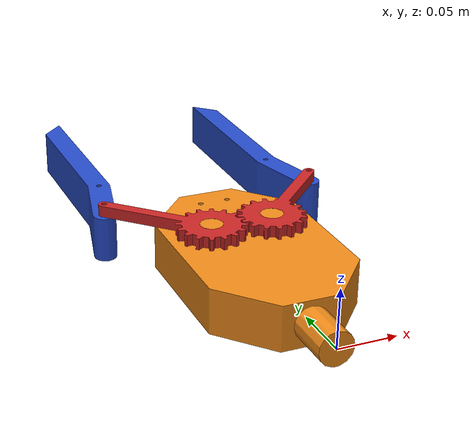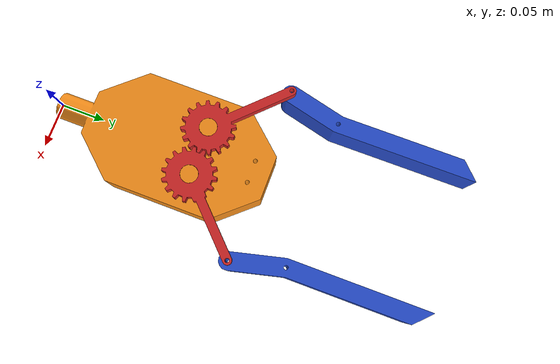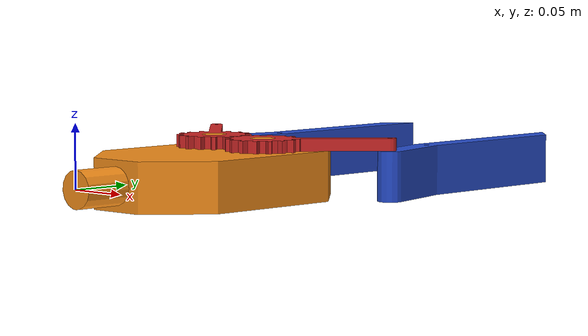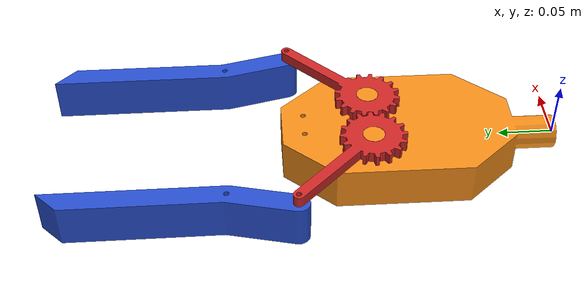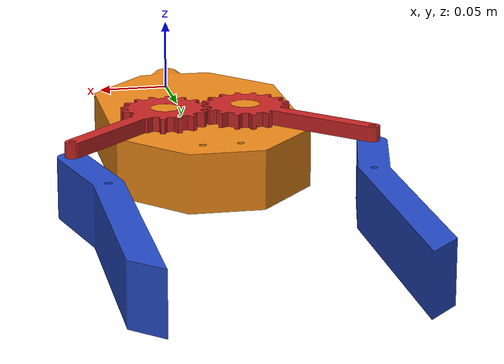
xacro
<?xml version="1.0" encoding="utf-8"?>
<robot name="" xmlns:xacro="https://www.ros.org/wiki/xacro">

  <xacro:macro name="visual_and_collision_origin">
    <origin xyz="0 0 0" rpy="0 0 0"/>
  </xacro:macro>

  <xacro:macro name="visual_and_collision_geometry" params="link_name">
    <geometry>
      <mesh filename="package://flip1_description/meshes/${link_name}.STL"/>
    </geometry>
  </xacro:macro>

  <xacro:macro name="visual_and_collision_for_link" params="material_name  gen_link_name">
    <visual>
      <xacro:visual_and_collision_origin/>
      <xacro:visual_and_collision_geometry link_name="${gen_link_name}"/>
      <material name="${material_name}"/>
    </visual>
    <collision>
      <xacro:visual_and_collision_origin/>
      <xacro:visual_and_collision_geometry link_name="${gen_link_name}"/>
    </collision>
  </xacro:macro>

  <xacro:macro name="link_tag" params="link material mass *inertial_origin **interia_matrix">
    <link name="${link}">
      <xacro:visual_and_collision_for_link material_name="${material}" gen_link_name="${link}"/>
      <inertial>
        <mass value="${mass}"/>
        <xacro:insert_block name="inertial_origin"/>
        <xacro:insert_block name="interia_matrix"/>
      </inertial>
    </link>
  </xacro:macro>

  <xacro:link_tag link="base_link_gripper" material="orange" mass="0.98099">
    <origin xyz="0 0.14142 0.00016012" rpy="0 0 0"/>
    <inertial_matrix>
      <inertia
        ixx="0.003388"
        ixy="-1.1855E-19"
        ixz="-1.5339E-20"
        iyy="0.0012787"
        iyz="-4.4891E-06"
        izz="0.0044032" />
    </inertial_matrix>
  </xacro:link_tag>

  <xacro:link_tag link="gear1_link" material="red" mass="0.02723">
    <origin xyz="-2.77555756156289E-17 0.0175862034544711 5.55111512312578E-17" rpy="0 0 0"/>
    <inertial_matrix>
      <inertia
        ixx="3.02981038903534E-05"
        ixy="1.6940658945086E-21"
        ixz="7.49263431833363E-22"
        iyy="4.50525088859917E-06"
        iyz="1.5400867235027E-21"
        izz="3.43494877805828E-05" />
    </inertial_matrix>
  </xacro:link_tag>

  <xacro:link_tag link="finger_gear1_link" material="blue" mass="0.17145">
    <origin xyz="-0.012289 0.101 0" rpy="0 0 0"/>
    <inertial_matrix>
      <inertia
        ixx="0.0007122"
        ixy="4.0775E-05"
        ixz="4.039E-21"
        iyy="3.2189E-05"
        iyz="-6.5264E-21"
        izz="0.00069867" />
    </inertial_matrix>
  </xacro:link_tag>

  <xacro:link_tag link="gear2_link" material="red" mass="0.02723">
    <origin xyz="4.33006840808159E-06 0.0177884712258021 5.55111512312578E-17" rpy="0 0 0"/>
    <inertial_matrix>
      <inertia
        ixx="3.0626740029709E-05"
        ixy="-1.15573930909179E-09"
        ixz="-1.4165993432485E-21"
        iyy="4.4831636497222E-06"
        iyz="4.26143905320326E-22"
        izz="3.46553024908243E-05"/>
    </inertial_matrix>
  </xacro:link_tag>

  <xacro:link_tag link="finger_gear2_link" material="blue" mass="0.17145">
    <origin xyz="-0.012289 0.101 -5.5511E-17" rpy="0 0 0"/>
    <inertial_matrix>
      <inertia
        ixx="0.0007122"
        ixy="4.0775E-05"
        ixz="-3.8232E-21"
        iyy="3.2189E-05"
        iyz="5.6109E-21"
        izz="0.00069867" />
    </inertial_matrix>
  </xacro:link_tag>

  <joint name="base_gear1_joint" type="revolute">
    <origin
      xyz="-0.0275 0.17 0.025"
      rpy="0 0 0.78573" />
    <parent
      link="base_link_gripper" />
    <child
      link="gear1_link" />
    <axis
      xyz="0 0 1" />
    <limit
      lower="-0.53"
      upper="1.19"
      effort="25"
      velocity="1" />
  </joint>

  <joint name="finger_gear1_joint" type="revolute">
    <origin
      xyz="0 0.099495 -0.025"
      rpy="-3.1416 0 2.3612" />
    <parent
      link="gear1_link" />
    <child
      link="finger_gear1_link" />
    <axis
      xyz="0 0 -1" />
    <limit
      lower="-1.23"
      upper="0.43"
      effort="25"
      velocity="1" />
  </joint>

  <joint name="base_gear2_joint" type="revolute">
    <origin
      xyz="0.0275 0.17 0.025"
      rpy="0 0 -0.78573" />
    <parent
      link="base_link_gripper" />
    <child
      link="gear2_link" />
    <axis
      xyz="0 0 -1" />
    <limit
      lower="-0.53"
      upper="1.19"
      effort="25"
      velocity="1" />
  </joint>

  <joint name="finger_gear2_joint" type="revolute">
    <origin xyz="0 0.1 -0.025" rpy="0 0 0.78989" />
    <parent link="gear2_link" />
    <child link="finger_gear2_link" />
    <axis xyz="0 0 -1" />
    <limit
      lower="-1.23"
      upper="0.43"
      effort="25"
      velocity="1" />
  </joint>

</robot>
